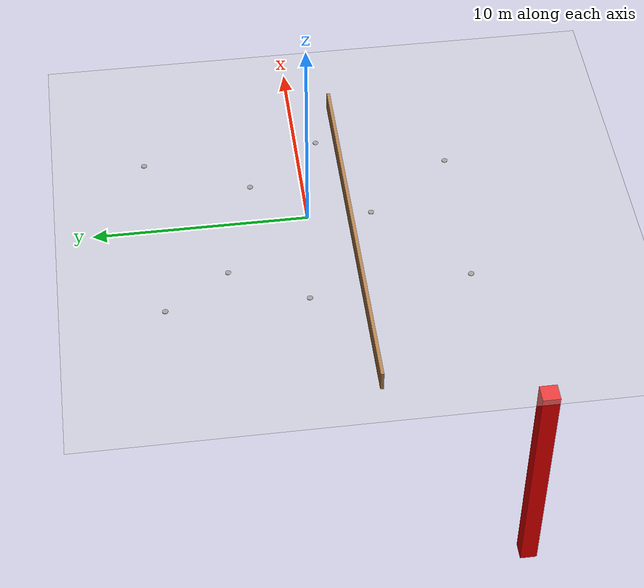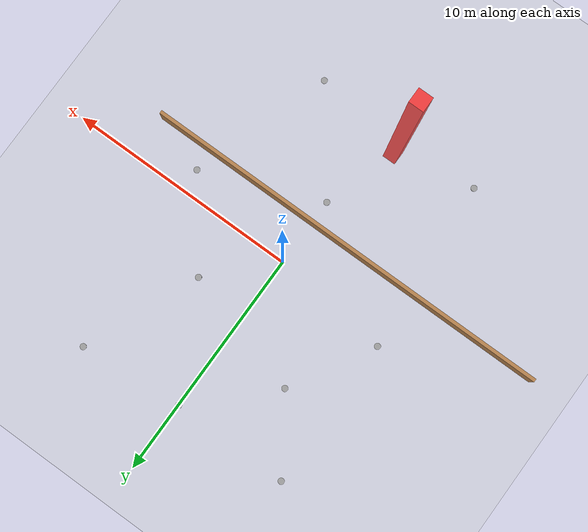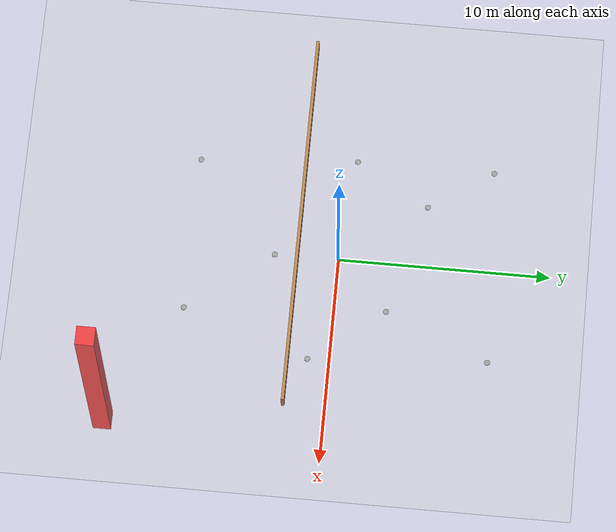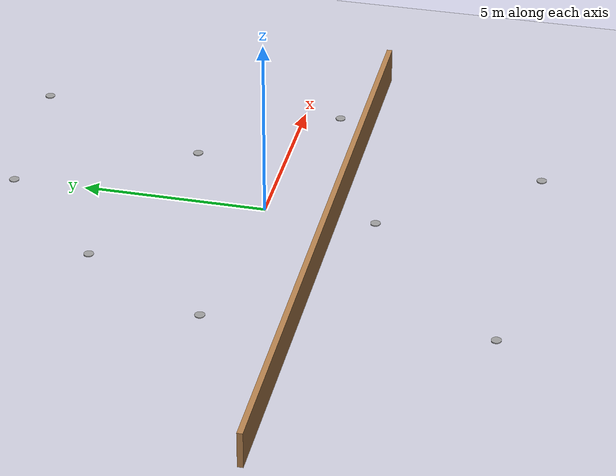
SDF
<sdf version="1.7">
 <world name="off-road_world">
  <light type="directional" name="sun">
   <pose>0 0 10 0 0 0</pose>
   <diffuse>0.8 0.8 0.8 1</diffuse>
   <specular>0.2 0.2 0.2 1</specular>
   <attenuation>
    <range>1000</range>
    <constant>0.9</constant>
    <linear>0.01</linear>
    <quadratic>0.001</quadratic>
   </attenuation>
   <direction>-0.5 0.1 -0.9</direction>
  </light>
  <include><name>ground_plane</name><uri>model://ground_plane</uri></include>
  <include><name>wall</name><uri>model://wall</uri></include>
  <include><name>unit_box_real</name><pose>0 -13 -22.54 0 0 0</pose><uri>model://unit_box_real</uri></include>
  <include>
   <name>unit_cylinder0</name>
   <pose>4.43 7.36 0 0 0 0</pose>
   <uri>model://unit_cylinder</uri>
   <static>true</static>
  </include>
  <include>
   <name>unit_cylinder1</name>
   <pose>0 7.00 0 0 0 0</pose>
   <uri>model://unit_cylinder</uri>
   <static>true</static>
  </include>
  <include>
   <name>unit_cylinder2</name>
   <pose>5 -1 0 0 0 0</pose>
   <uri>model://unit_cylinder</uri>
   <static>true</static>
  </include>
  <include>
   <name>unit_cylinder3</name>
   <pose>-4.46 -6.94 0 0 0 0</pose>
   <uri>model://unit_cylinder</uri>
   <static>true</static>
  </include>
  <include>
   <name>unit_cylinder4</name>
   <pose>2.37 2.46 0 0 0 0</pose>
   <uri>model://unit_cylinder</uri>
   <static>true</static>
  </include>
  <include>
   <name>unit_cylinder5</name>
   <pose>0.00 -3.00 0 0 0 0</pose>
   <uri>model://unit_cylinder</uri>
   <static>true</static>
  </include>
  <include>
   <name>unit_cylinder6</name>
   <pose>-5.00 7.00 0 0 0 0</pose>
   <uri>model://unit_cylinder</uri>
   <static>true</static>
  </include>
  <include>
   <name>unit_cylinder7</name>
   <pose>3.00 -7.00 0 0 0 0</pose>
   <uri>model://unit_cylinder</uri>
   <static>true</static>
  </include>
  <include>
   <name>unit_cylinder8</name>
   <pose>-5.00 0.50 0 0 0 0</pose>
   <uri>model://unit_cylinder</uri>
   <static>true</static>
  </include>
  <include>
   <name>unit_cylinder9</name>
   <pose>-3 4 0 0 0 0</pose>
   <uri>model://unit_cylinder</uri>
   <static>true</static>
  </include>
  <include>
   <name>top_down_camera</name>
   <pose>0 0 75.8 0 1.57079632679 0</pose>
   <uri>model://top_down_camera</uri>
  </include>
 </world>
</sdf>

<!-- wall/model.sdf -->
<sdf version='1.7'>
  <model name='wall'>
    <pose>-1.625 -1.0025 0 0 -0 0</pose>
    <link name='Wall_0'>
      <collision name='Wall_0_Collision'>
        <geometry>
          <box>
            <size>18 0.15 1</size>
          </box>
        </geometry>
        <pose>0 0 0.5 0 -0 0</pose>
      </collision>
      <visual name='Wall_0_Visual'>
        <pose>0 0 0.5 0 -0 0</pose>
        <geometry>
          <box>
            <size>18 0.15 1</size>
          </box>
        </geometry>
        <material>
          <script>
            <uri>file://media/materials/scripts/gazebo.material</uri>
            <name>Gazebo/Wood</name>
          </script>
          <ambient>0.760784 0.662745 0.627451 1</ambient>
        </material>
        <meta>
          <layer>0</layer>
        </meta>
      </visual>
      <pose>0 -0.9275 0 0 -0 3.14159</pose>
    </link>
    <static>1</static>
  </model>
</sdf>

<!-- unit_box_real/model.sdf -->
<sdf version='1.7'>
  <model name='unit_box_real'>
    <link name='link'>
      <inertial>
        <mass>1</mass>
        <inertia>
          <ixx>0.166667</ixx>
          <ixy>0</ixy>
          <ixz>0</ixz>
          <iyy>0.166667</iyy>
          <iyz>0</iyz>
          <izz>0.166667</izz>
        </inertia>
        <pose>0 0 0 0 -0 0</pose>
      </inertial>
      <self_collide>0</self_collide>
      <enable_wind>0</enable_wind>
      <kinematic>0</kinematic>
      <pose>0 0 0 0 -0 0</pose>
      <visual name='visual'>
        <geometry>
          <box>
            <size>1 1 15</size>
          </box>
        </geometry>
        <material>
          <script>
            <name>Gazebo/Grey</name>
            <uri>file://media/materials/scripts/gazebo.material</uri>
          </script>
          <shader type='pixel'/>
          <ambient>1 0 0 1</ambient>
        </material>
        <pose>0 0 0 0 -0 0</pose>
        <transparency>0</transparency>
        <cast_shadows>1</cast_shadows>
      </visual>
      <collision name='collision'>
        <laser_retro>0</laser_retro>
        <max_contacts>10</max_contacts>
        <pose>0 0 0 0 -0 0</pose>
        <geometry>
          <box>
            <size>1 1 1</size>
          </box>
        </geometry>
        <surface>
          <friction>
            <ode>
              <mu>1</mu>
              <mu2>1</mu2>
              <fdir1>0 0 0</fdir1>
              <slip1>0</slip1>
              <slip2>0</slip2>
            </ode>
            <torsional>
              <coefficient>1</coefficient>
              <patch_radius>0</patch_radius>
              <surface_radius>0</surface_radius>
              <use_patch_radius>1</use_patch_radius>
              <ode>
                <slip>0</slip>
              </ode>
            </torsional>
          </friction>
          <bounce>
            <restitution_coefficient>0</restitution_coefficient>
            <threshold>1e+06</threshold>
          </bounce>
          <contact>
            <collide_without_contact>0</collide_without_contact>
            <collide_without_contact_bitmask>1</collide_without_contact_bitmask>
            <collide_bitmask>1</collide_bitmask>
            <ode>
              <soft_cfm>0</soft_cfm>
              <soft_erp>0.2</soft_erp>
              <kp>1e+13</kp>
              <kd>1</kd>
              <max_vel>0.01</max_vel>
              <min_depth>0</min_depth>
            </ode>
            <bullet>
              <split_impulse>1</split_impulse>
              <split_impulse_penetration_threshold>-0.01</split_impulse_penetration_threshold>
              <soft_cfm>0</soft_cfm>
              <soft_erp>0.2</soft_erp>
              <kp>1e+13</kp>
              <kd>1</kd>
            </bullet>
          </contact>
        </surface>
      </collision>
    </link>
    <static>1</static>
    <allow_auto_disable>1</allow_auto_disable>
  </model>
</sdf>

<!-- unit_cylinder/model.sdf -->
<sdf version="1.7">
  <model name="unit_cylinder">
    <link name="link">
      <inertial>
        <mass>1</mass>
        <inertia>
          <ixx>0.145833</ixx>
          <ixy>0</ixy>
          <ixz>0</ixz>
          <iyy>0.145833</iyy>
          <iyz>0</iyz>
          <izz>0.125</izz>
        </inertia>
        <pose>0 0 0 0 -0 0</pose>
      </inertial>
      <self_collide>0</self_collide>
      <enable_wind>0</enable_wind>
      <kinematic>0</kinematic>
      <pose>0 0 0 0 -0 0</pose>
      <visual name="visual">
        <geometry>
          <cylinder>
            <radius>0.134471</radius>
            <length>0.026847</length>
          </cylinder>
        </geometry>
        <material>
          <script>
            <name>Gazebo/Grey</name>
            <uri>file://media/materials/scripts/gazebo.material</uri>
          </script>
          <shader type="pixel"/>
        </material>
        <pose>0 0 0 0 -0 0</pose>
        <transparency>0</transparency>
        <cast_shadows>1</cast_shadows>
      </visual>
      <collision name="collision">
        <laser_retro>0</laser_retro>
        <max_contacts>10</max_contacts>
        <pose>0 0 0 0 -0 0</pose>
        <geometry>
          <cylinder>
            <radius>0.134471</radius>
            <length>0.026847</length>
          </cylinder>
        </geometry>
        <surface>
          <friction>
            <ode>
              <mu>1</mu>
              <mu2>1</mu2>
              <fdir1>0 0 0</fdir1>
              <slip1>0</slip1>
              <slip2>0</slip2>
            </ode>
            <torsional>
              <coefficient>1</coefficient>
              <patch_radius>0</patch_radius>
              <surface_radius>0</surface_radius>
              <use_patch_radius>1</use_patch_radius>
              <ode>
                <slip>0</slip>
              </ode>
            </torsional>
          </friction>
          <bounce>
            <restitution_coefficient>0</restitution_coefficient>
            <threshold>1e+06</threshold>
          </bounce>
          <contact>
            <collide_without_contact>0</collide_without_contact>
            <collide_without_contact_bitmask>1</collide_without_contact_bitmask>
            <collide_bitmask>1</collide_bitmask>
            <ode>
              <soft_cfm>0</soft_cfm>
              <soft_erp>0.2</soft_erp>
              <kp>1e+13</kp>
              <kd>1</kd>
              <max_vel>0.01</max_vel>
              <min_depth>0</min_depth>
            </ode>
            <bullet>
              <split_impulse>1</split_impulse>
              <split_impulse_penetration_threshold>-0.01</split_impulse_penetration_threshold>
              <soft_cfm>0</soft_cfm>
              <soft_erp>0.2</soft_erp>
              <kp>1e+13</kp>
              <kd>1</kd>
            </bullet>
          </contact>
        </surface>
      </collision>
    </link>
    <static>0</static>
    <allow_auto_disable>1</allow_auto_disable>
  </model>
</sdf>

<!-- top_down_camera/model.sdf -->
<sdf version="1.9">
  <model name="top_down_camera">
    <static>true</static>
    <pose>500 500 200 0 1.57 0</pose>
    <link name="link">
      <sensor name="top_cam" type="camera">
        <always_on>1</always_on>
        <update_rate>30</update_rate>
        <topic>top_down_camera</topic>
        <camera>
          <horizontal_fov>1.2</horizontal_fov>
          <image>
            <width>1920</width>
            <height>1080</height>
            <format>R8G8B8</format>
          </image>
          <clip>
            <near>0.1</near>
            <far>500</far>
          </clip>
        </camera>
      </sensor>
    </link>
  </model>
</sdf>
